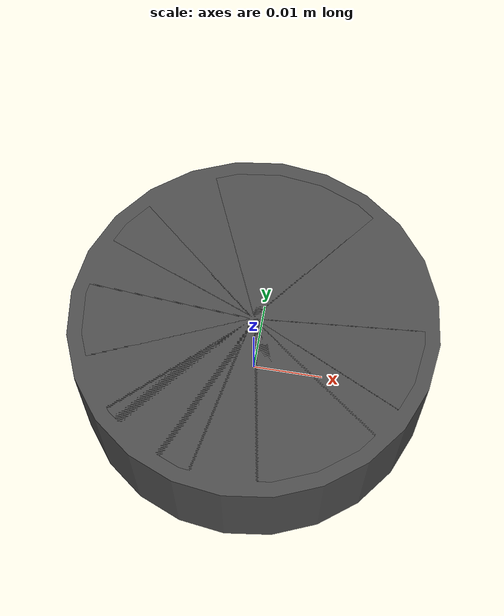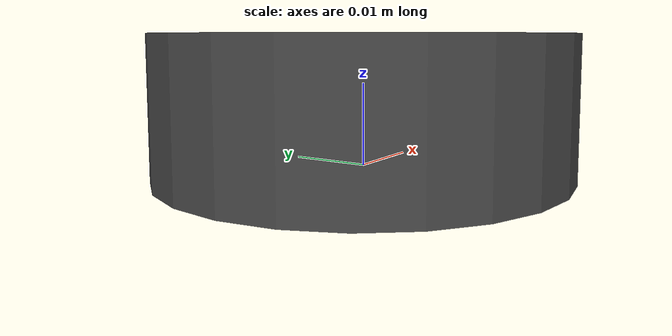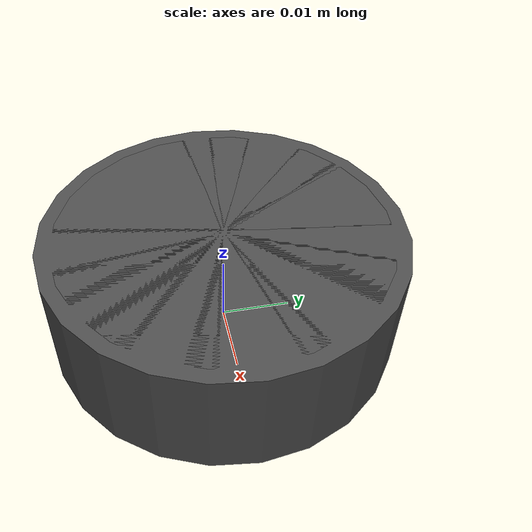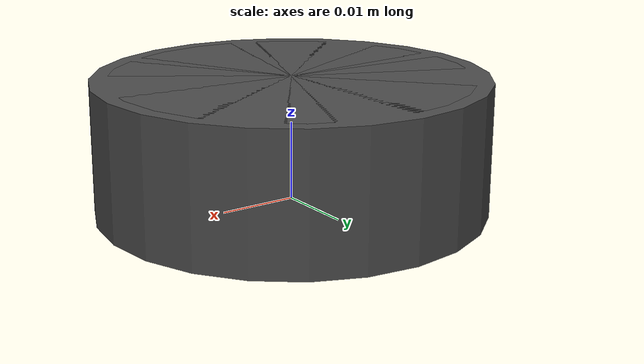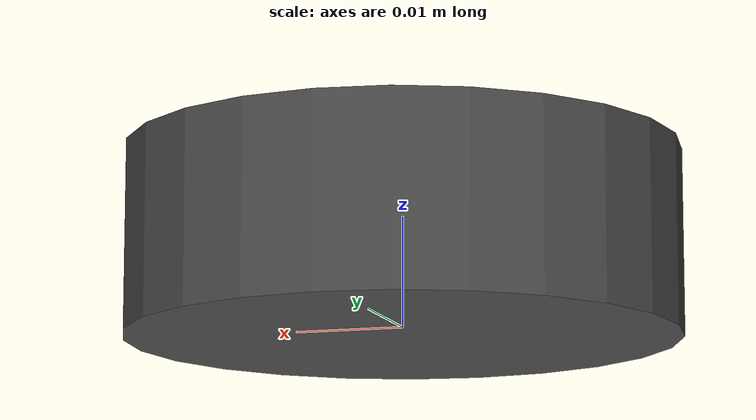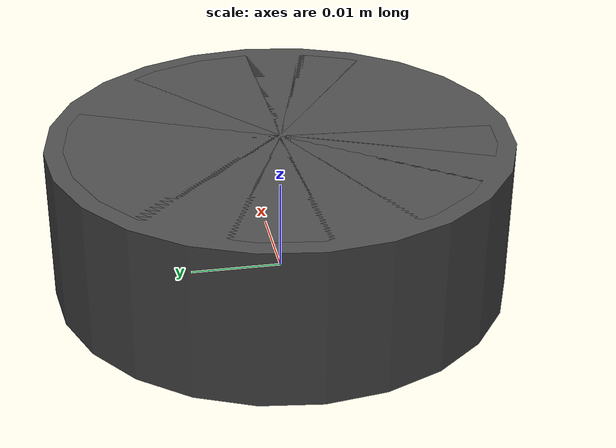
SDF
<?xml version="1.0" ?>
<sdf version="1.6">
    <model name="StaticRoFICoM">
        <pose>0 0 16e-3 0 0 0</pose>
        <include>
            <uri>model://roficom</uri>
        </include>
        <joint name="fixToWorld" type="fixed">
            <parent>world</parent>
            <child>RoFICoM::outer</child>
        </joint>
    </model>
</sdf>

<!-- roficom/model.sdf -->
<sdf version='1.6'>
    <model name='RoFICoM'>
        <self_collide>false</self_collide>
        <link name='outer'>
            <inertial>
                <pose>0 0 -8.5e-3 0 0 0</pose>
                <mass>10e-3</mass> <!-- TODO check -->
                <inertia>
                    <!-- ixx = iyy = 1/12 * mass * (3 * radius^2 + length^2) -->
                    <!-- izz = 0.5 * mass * radius^2 -->
                    <!-- ixy = ixz = iyz = 0 -->
                    <ixx>1.775833e-6</ixx>
                    <iyy>1.775833e-6</iyy>
                    <izz>3.125e-6</izz>
                    <ixy>0.0</ixy>
                    <ixz>0.0</ixz>
                    <iyz>0.0</iyz>
                </inertia>
            </inertial>
            <collision name='outer-collision'>
                <pose>0 0 -8.5e-3 0 0 0</pose>
                <geometry>
                    <cylinder>
                        <radius>25e-3</radius>
                        <length>17e-3</length>
                    </cylinder>
                </geometry>
            </collision>
            <visual name='visual'>
                <pose>0 0 -8.5e-3 0 0 0</pose>
                <geometry>
                    <cylinder>
                        <radius>25e-3</radius>
                        <length>17e-3</length>
                    </cylinder>
                </geometry>
                <material>
                    <script>
                        <uri>file://media/materials/scripts/gazebo.material</uri>
                        <name>Gazebo/DarkGrey</name>
                    </script>
                </material>
            </visual>
        </link>
        <link name='inner'>
            <inertial>
                <pose>0 0 -3.5e-3 0 0 0</pose>
                <mass>10e-3</mass> <!-- TODO check -->
                <inertia>
                    <!-- ixx = iyy = 1/12 * mass * (3 * radius^2 + length^2) -->
                    <!-- izz = 0.5 * mass * radius^2 -->
                    <!-- ixy = ixz = iyz = 0 -->
                    <ixx>1.3633e-6</ixx>
                    <iyy>1.3633e-6</iyy>
                    <izz>2.645e-6</izz>
                    <ixy>0.0</ixy>
                    <ixz>0.0</ixz>
                    <iyz>0.0</iyz>
                </inertia>
            </inertial>
            <collision name='inner-collision'>
                <pose>0 0 -3.5e-3 0 0 0</pose>
                <geometry>
                    <cylinder>
                        <radius>23e-3</radius>
                        <length>7e-3</length>
                    </cylinder>
                </geometry>
            </collision>
            <visual name='visual'>
                <pose>0 0 -3.5e-3 0 0 0</pose>
                <geometry>
                    <cylinder>
                        <radius>23e-3</radius>
                        <length>7e-3</length>
                    </cylinder>
                </geometry>
                <material>
                    <script>
                        <uri>file://media/materials/scripts/gazebo.material</uri>
                        <name>Gazebo/DarkGrey</name>
                    </script>
                </material>
            </visual>
        </link>
        <joint name='extendJoint' type='prismatic'>
            <parent>outer</parent>
            <child>inner</child>
            <axis>
                <xyz>0 0 1</xyz>
                <limit>
                    <lower>0</lower>
                    <upper>7e-3</upper>
                    <effort>50</effort>
                    <velocity>25e-3</velocity>
                </limit>
                <initial_position>0</initial_position>
                <dynamics>
                    <friction>0</friction>
                    <spring_reference>0</spring_reference>
                    <spring_stiffness>0</spring_stiffness>
                </dynamics>
                <use_parent_model_frame>1</use_parent_model_frame>
            </axis>
        </joint>
        <plugin name='roficom' filename='libroficomPlugin.so'>
            <joint>extendJoint</joint>
            <extend>false</extend>
        </plugin>
    </model>
</sdf>
